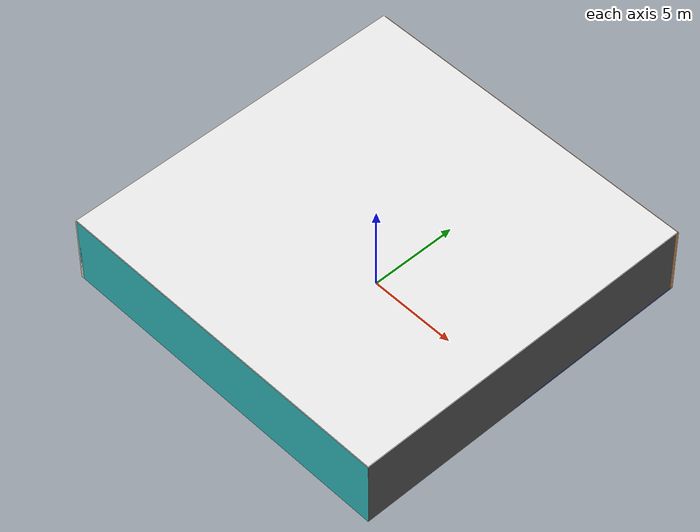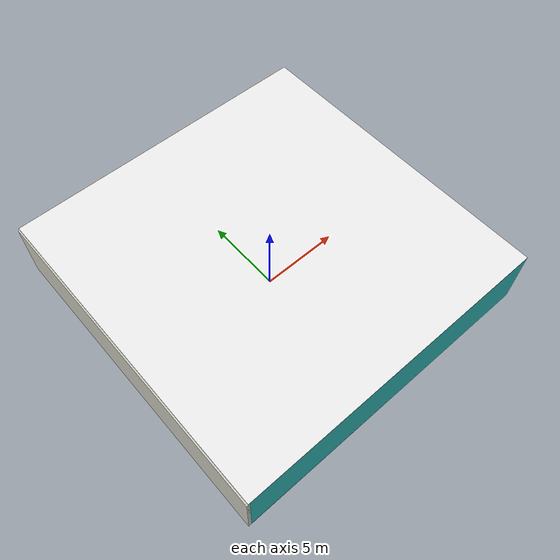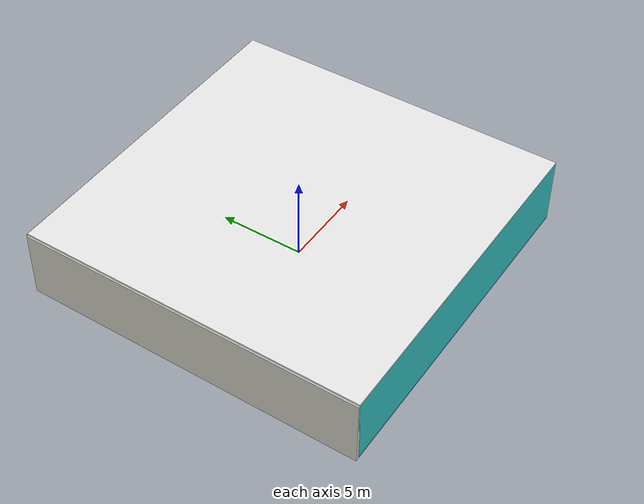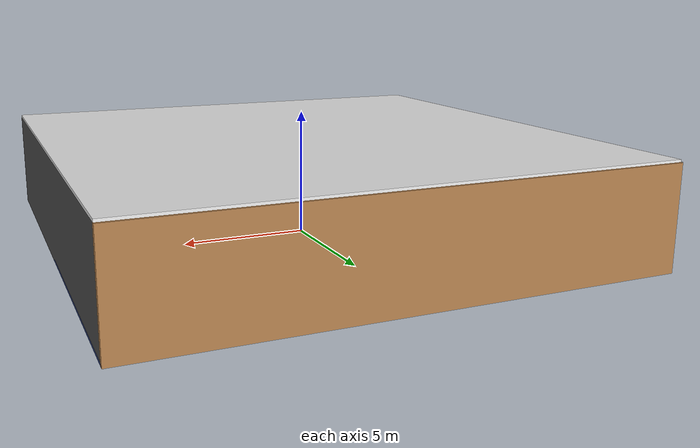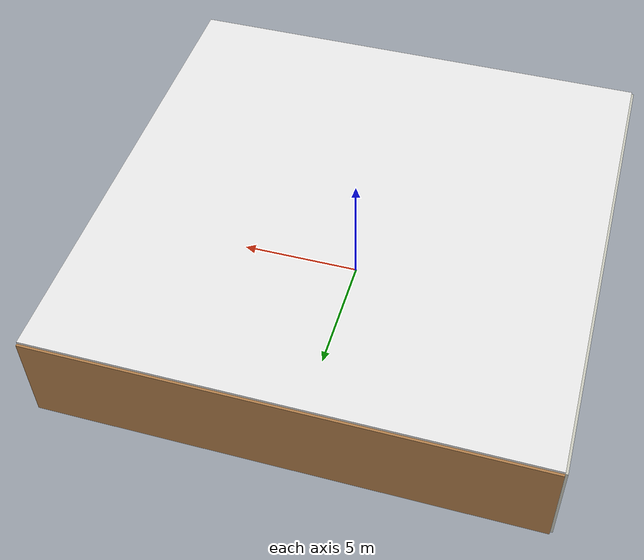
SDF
<sdf version="1.4">
 <world name="default">
  <physics type="ode">
   <max_step_size>0.001</max_step_size>
   <real_time_factor>1</real_time_factor>
   <real_time_update_rate>1000</real_time_update_rate>
   <gravity>0 0 -9.8</gravity>
  </physics>
  <scene><ambient>0.4 0.4 0.4 1</ambient><background>0.7 0.7 0.7 1</background><shadows>1</shadows></scene>
  <model name="Surrounding">
   <static>1</static>
   <link name="Ceiling">
    <collision name="Ceiling_Collision"><geometry><box><size>20 20 0.1</size></box></geometry></collision>
    <visual name="Ceiling_Visual">
     <geometry><box><size>20 20 0.1</size></box></geometry>
     <material>
      <script><uri>file://media/materials/scripts/gazebo.material</uri><name>Gazebo/WhiteGlow</name></script>
     </material>
    </visual>
    <pose>0 0 4.05 0 0 0</pose>
   </link>
   <link name="Wall_South">
    <collision name="Wall_South_Collision">
     <geometry><box><size>20 0 4</size></box></geometry>
     <pose>0 0 2 0 -0 0</pose>
    </collision>
    <visual name="Wall_South_Visual">
     <pose>0 0 2 0 -0 0</pose>
     <geometry><box><size>20 0 4</size></box></geometry>
     <material>
      <script><uri>file://media/materials/scripts/gazebo.material</uri><name>Gazebo/TurquoiseGlow</name></script>
     </material>
    </visual>
    <velocity_decay><linear>0</linear><angular>0</angular></velocity_decay>
    <pose>0 -10 0 0 -0 0</pose>
   </link>
   <link name="Wall_East">
    <collision name="Wall_21_Collision">
     <geometry><box><size>20 0 4</size></box></geometry>
     <pose>0 0 2 0 -0 0</pose>
    </collision>
    <visual name="Wall_21_Visual">
     <pose>0 0 2 0 -0 0</pose>
     <geometry><box><size>20 0 4</size></box></geometry>
     <material>
      <script><uri>file://media/materials/scripts/gazebo.material</uri><name>Gazebo/DarkGrey</name></script>
     </material>
    </visual>
    <velocity_decay><linear>0</linear><angular>0</angular></velocity_decay>
    <pose>10 0 0 0 -0 1.5708</pose>
   </link>
   <link name="Wall_North">
    <collision name="Wall_22_Collision">
     <geometry><box><size>20 0.2 4</size></box></geometry>
     <pose>0 0 2 0 -0 0</pose>
    </collision>
    <visual name="Wall_22_Visual">
     <pose>0 0 2 0 -0 0</pose>
     <geometry><box><size>20 0.2 4</size></box></geometry>
     <material>
      <script><uri>file://media/materials/scripts/gazebo.material</uri><name>Gazebo/Wood</name></script>
     </material>
    </visual>
    <velocity_decay><linear>0</linear><angular>0</angular></velocity_decay>
    <pose>0 10 0 0 -0 0</pose>
   </link>
   <link name="Wall_West">
    <collision name="Wall_23_Collision">
     <geometry><box><size>20 0.2 4</size></box></geometry>
     <pose>0 0 2 0 -0 0</pose>
    </collision>
    <visual name="Wall_23_Visual">
     <pose>0 0 2 0 -0 0</pose>
     <geometry><box><size>20 0.2 4</size></box></geometry>
     <material>
      <script><uri>file://media/materials/scripts/gazebo.material</uri><name>Gazebo/PaintedWall</name></script>
     </material>
    </visual>
    <velocity_decay><linear>0</linear><angular>0</angular></velocity_decay>
    <pose>-10 0 0 0 0 -1.5708</pose>
   </link>
   <link name="Ground_link">
    <collision name="collision">
     <pose>0 0 .05 0 -0 0</pose>
     <geometry><box><size>20 20 0.1</size></box></geometry>
    </collision>
    <visual name="visual">
     <pose>0 0 .05 0 -0 0</pose>
     <geometry><box><size>20 20 0.1</size></box></geometry>
     <material>
      <script><uri>file://media/materials/scripts/gazebo.material</uri><name>Gazebo/BlueTransparent</name></script>
     </material>
    </visual>
   </link>
   <static>1</static>
  </model>
  <spherical_coordinates>
   <surface_model>EARTH_WGS84</surface_model>
   <latitude_deg>0</latitude_deg>
   <longitude_deg>0</longitude_deg>
   <elevation>0</elevation>
   <heading_deg>0</heading_deg>
  </spherical_coordinates>
  <light name="lightball_0" type="diffuse">
   <diffuse>0.8 0.8 0.8 1</diffuse>
   <specular>0.2 0.2 0.2 1</specular>
   <attenuation>
    <range>100</range>
    <constant>0.7</constant>
    <linear>0.01</linear>
    <quadratic>0.001</quadratic>
   </attenuation>
   <direction>-0.5 0.1 -0.9</direction>
   <pose>7.02563678357 3.98659996945 1.80867152574 0 0 0</pose>
  </light>
  <light name="lightball_1" type="diffuse">
   <diffuse>0.8 0.8 0.8 1</diffuse>
   <specular>0.2 0.2 0.2 1</specular>
   <attenuation>
    <range>100</range>
    <constant>0.7</constant>
    <linear>0.01</linear>
    <quadratic>0.001</quadratic>
   </attenuation>
   <direction>-0.5 0.1 -0.9</direction>
   <pose>-2.12219502348 9.81611132398 2.48570446402 0 0 0</pose>
  </light>
  <light name="lightball_2" type="diffuse">
   <diffuse>0.8 0.8 0.8 1</diffuse>
   <specular>0.2 0.2 0.2 1</specular>
   <attenuation>
    <range>100</range>
    <constant>0.7</constant>
    <linear>0.01</linear>
    <quadratic>0.001</quadratic>
   </attenuation>
   <direction>-0.5 0.1 -0.9</direction>
   <pose>5.99086555677 -7.2004286226 3.38891518358 0 0 0</pose>
  </light>
  <light name="lightball_3" type="diffuse">
   <diffuse>0.8 0.8 0.8 1</diffuse>
   <specular>0.2 0.2 0.2 1</specular>
   <attenuation>
    <range>100</range>
    <constant>0.7</constant>
    <linear>0.01</linear>
    <quadratic>0.001</quadratic>
   </attenuation>
   <direction>-0.5 0.1 -0.9</direction>
   <pose>-1.27199433262 -9.98553809472 0.627368163569 0 0 0</pose>
  </light>
  <include>
   <uri>model://robocup_3Dsim_goal</uri>
   <pose>1.36040270787 -1.50213442327 0 0 0 1.84341707887</pose>
  </include>
  <include>
   <uri>model://robocup_3Dsim_goal</uri>
   <pose>5.47078871005 -2.09944967169 0 0 0 1.05515624508</pose>
  </include>
 </world>
</sdf>

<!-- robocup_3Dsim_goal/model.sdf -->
<sdf version="1.5">
  <model name="robocup_3d_goal">
    <static>true</static>
    <link name="left_post">
      <pose>0 1.05 0.45 0 0 0</pose>
      <collision name="collision">
        <geometry>
          <cylinder>
            <radius>0.05</radius>
            <length>0.9</length>
          </cylinder>
        </geometry>
      </collision>
      <visual name="visual">
        <geometry>
          <cylinder>
            <radius>0.05</radius>
            <length>0.9</length>
          </cylinder>
        </geometry>
        <material>
          <script>
            <uri>file://media/materials/scripts/gazebo.material</uri>
            <name>Gazebo/ZincYellow</name>
          </script>
        </material>
      </visual>
    </link>
    <link name="left_support_horiz_lower">
      <pose>0.30 1.05 0.01 0 0 0</pose>
      <collision name="collision">
        <geometry>
          <box>
            <size>0.50 0.02 0.02</size>
          </box>
        </geometry>
      </collision>
      <visual name="visual">
        <geometry>
          <box>
            <size>0.50 0.02 0.02</size>
          </box>
        </geometry>
        <material>
          <script>
            <uri>file://media/materials/scripts/gazebo.material</uri>
            <name>Gazebo/White</name>
          </script>
        </material>
      </visual>
    </link>
    <link name="left_support_horiz_upper">
      <pose>0.30 1.05 0.79 0 0 0</pose>
      <collision name="collision">
        <geometry>
          <box>
            <size>0.50 0.02 0.02</size>
          </box>
        </geometry>
      </collision>
      <visual name="visual">
        <geometry>
          <box>
            <size>0.50 0.02 0.02</size>
          </box>
        </geometry>
        <material>
          <script>
            <uri>file://media/materials/scripts/gazebo.material</uri>
            <name>Gazebo/White</name>
          </script>
        </material>
      </visual>
    </link>
    <link name="left_support_vertical">
      <pose>0.56 1.05 0.4 0 1.5708 0</pose>
      <collision name="collision">
        <geometry>
          <box>
            <size>0.80 0.02 0.02</size>
          </box>
        </geometry>
      </collision>
      <visual name="visual">
        <geometry>
          <box>
            <size>0.80 0.02 0.02</size>
          </box>
        </geometry>
        <material>
          <script>
            <uri>file://media/materials/scripts/gazebo.material</uri>
            <name>Gazebo/White</name>
          </script>
        </material>
      </visual>
    </link>
    <link name="right_support_horiz_lower">
      <pose>0.30 -1.05 0.01 0 0 0</pose>
      <collision name="collision">
        <geometry>
          <box>
            <size>0.50 0.02 0.02</size>
          </box>
        </geometry>
      </collision>
      <visual name="visual">
        <geometry>
          <box>
            <size>0.50 0.02 0.02</size>
          </box>
        </geometry>
        <material>
          <script>
            <uri>file://media/materials/scripts/gazebo.material</uri>
            <name>Gazebo/White</name>
          </script>
        </material>
      </visual>
    </link>
    <link name="right_support_horiz_upper">
      <pose>0.30 -1.05 0.79 0 0 0</pose>
      <collision name="collision">
        <geometry>
          <box>
            <size>0.50 0.02 0.02</size>
          </box>
        </geometry>
      </collision>
      <visual name="visual">
        <geometry>
          <box>
            <size>0.50 0.02 0.02</size>
          </box>
        </geometry>
        <material>
          <script>
            <uri>file://media/materials/scripts/gazebo.material</uri>
            <name>Gazebo/White</name>
          </script>
        </material>
      </visual>
    </link>
    <link name="right_support_vertical">
      <pose>0.56 -1.05 0.4 0 1.5708 0</pose>
      <collision name="collision">
        <geometry>
          <box>
            <size>0.80 0.02 0.02</size>
          </box>
        </geometry>
      </collision>
      <visual name="visual">
        <geometry>
          <box>
            <size>0.80 0.02 0.02</size>
          </box>
        </geometry>
        <material>
          <script>
            <uri>file://media/materials/scripts/gazebo.material</uri>
            <name>Gazebo/White</name>
          </script>
        </material>
      </visual>
    </link>
    <link name="center_support_horiz_lower">
      <pose>0.56 0 0.01 0 1.5708 0</pose>
      <collision name="collision">
        <geometry>
          <box>
            <size>0.02 2.08 0.02</size>
          </box>
        </geometry>
      </collision>
      <visual name="visual">
        <geometry>
          <box>
            <size>0.02 2.08 0.02</size>
          </box>
        </geometry>
        <material>
          <script>
            <uri>file://media/materials/scripts/gazebo.material</uri>
            <name>Gazebo/White</name>
          </script>
        </material>
      </visual>
    </link>
    <link name="center_support_horiz_upper">
      <pose>0.56 0 0.79 0 1.5708 0</pose>
      <collision name="collision">
        <geometry>
          <box>
            <size>0.02 2.08 0.02</size>
          </box>
        </geometry>
      </collision>
      <visual name="visual">
        <geometry>
          <box>
            <size>0.02 2.08 0.02</size>
          </box>
        </geometry>
        <material>
          <script>
            <uri>file://media/materials/scripts/gazebo.material</uri>
            <name>Gazebo/White</name>
          </script>
        </material>
      </visual>
    </link>
    <link name="right_post">
      <pose>0 -1.05 0.45 0 0 0</pose>
      <collision name="collision">
        <geometry>
          <cylinder>
            <radius>0.05</radius>
            <length>0.9</length>
          </cylinder>
        </geometry>
      </collision>
      <visual name="visual">
        <geometry>
          <cylinder>
            <radius>0.05</radius>
            <length>0.9</length>
          </cylinder>
        </geometry>
        <material>
          <script>
            <uri>file://media/materials/scripts/gazebo.material</uri>
            <name>Gazebo/ZincYellow</name>
          </script>
        </material>
      </visual>
    </link>
    <link name="crossbar">
      <pose>0 0 0.85 1.57 1.57 0</pose>
      <collision name="collision">
        <geometry>
          <cylinder>
            <radius>0.05</radius>
            <length>2.0</length>
          </cylinder>
        </geometry>
      </collision>
      <visual name="visual">
        <geometry>
          <cylinder>
            <radius>0.05</radius>
            <length>2.0</length>
          </cylinder>
        </geometry>
        <material>
          <script>
            <uri>file://media/materials/scripts/gazebo.material</uri>
            <name>Gazebo/ZincYellow</name>
          </script>
        </material>
      </visual>
    </link>
    <link name="center_net">
      <pose>0.56 0 0.40 0 0 0</pose>
      <collision name="collision">
        <geometry>
          <box>
            <size>0.01 2.1 0.80</size>
          </box>
        </geometry>
      </collision>
      <visual name="visual">
        <geometry>
          <box>
            <size>0.01 2.1 0.80</size>
          </box>
        </geometry>
        <material>
          <script>
            <uri>model://../model_source/models/robocup09_spl_field/materials/scripts/</uri>
            <uri>model://../model_source/models/robocup09_spl_field/materials/textures/</uri>
            <name>RoboCup/Net</name>
          </script>
        </material>
      </visual>
    </link>
    <link name="left_net">
      <pose>0.30 1.05 0.40 0 0 0</pose>
      <collision name="collision">
        <geometry>
          <box>
            <size>0.50 0.01 0.76</size>
          </box>
        </geometry>
      </collision>
      <visual name="visual">
        <geometry>
          <box>
            <size>0.50 0.01 0.76</size>
          </box>
        </geometry>
        <material>
          <script>
            <uri>model://../model_source/models/robocup09_spl_field/materials/scripts/</uri>
            <uri>model://../model_source/models/robocup09_spl_field/materials/textures/</uri>
            <name>RoboCup/Net</name>
          </script>
        </material>
      </visual>
    </link>
    <link name="right_net">
      <pose>0.30 -1.05 0.40 0 0 0</pose>
      <collision name="collision">
        <geometry>
          <box>
            <size>0.50 0.01 0.76</size>
          </box>
        </geometry>
      </collision>
      <visual name="visual">
        <geometry>
          <box>
            <size>0.50 0.01 0.76</size>
          </box>
        </geometry>
        <material>
          <script>
            <uri>model://../model_source/models/robocup09_spl_field/materials/scripts/</uri>
            <uri>model://../model_source/models/robocup09_spl_field/materials/textures/</uri>
            <name>RoboCup/Net</name>
          </script>
        </material>
      </visual>
    </link>
  </model>
</sdf>
